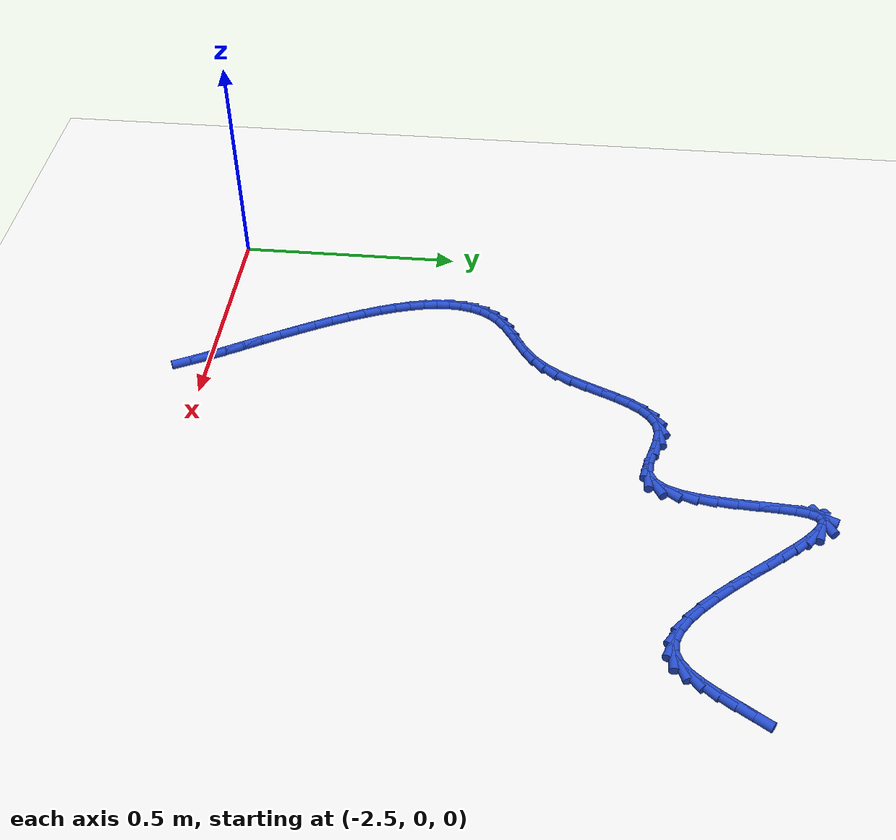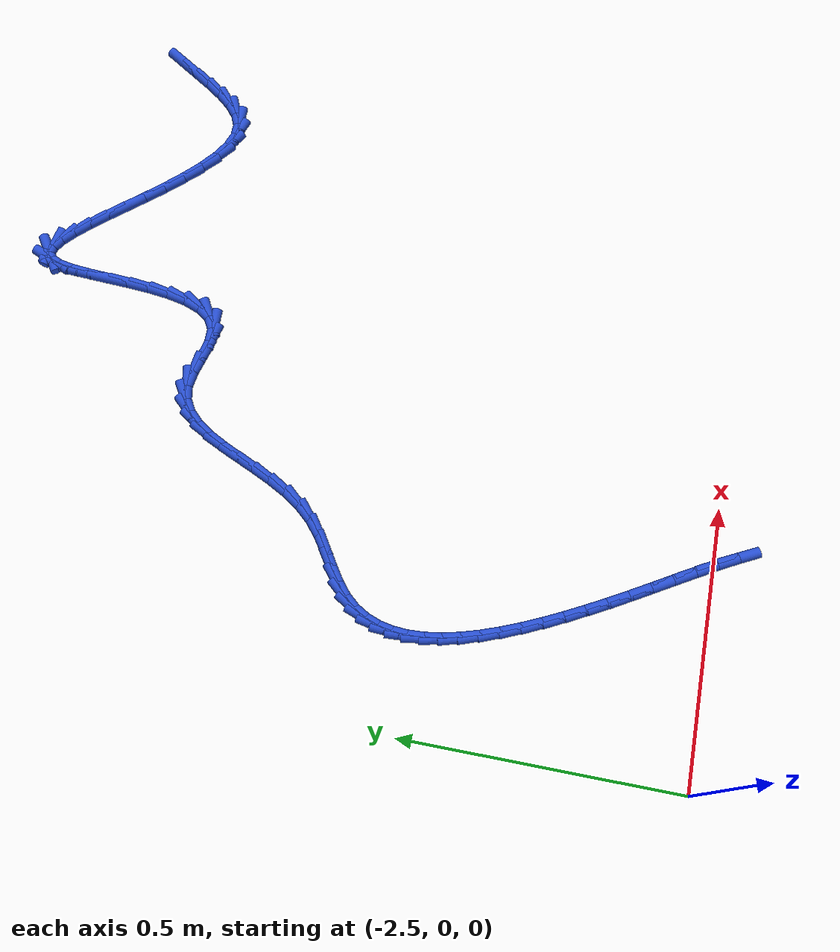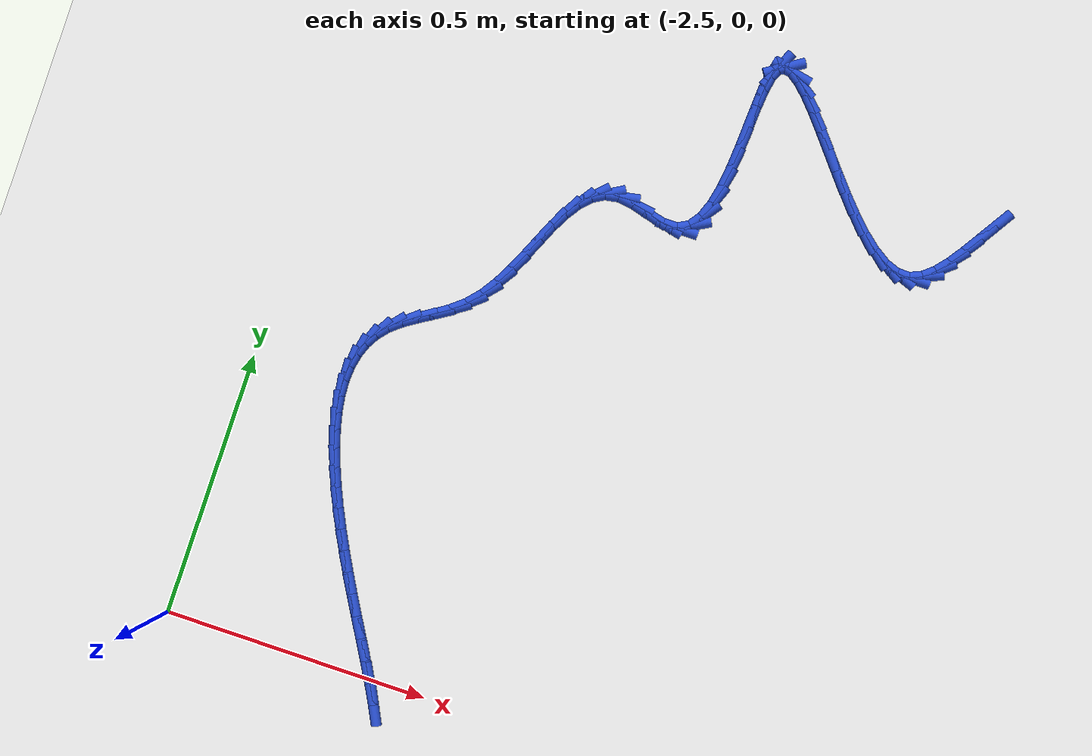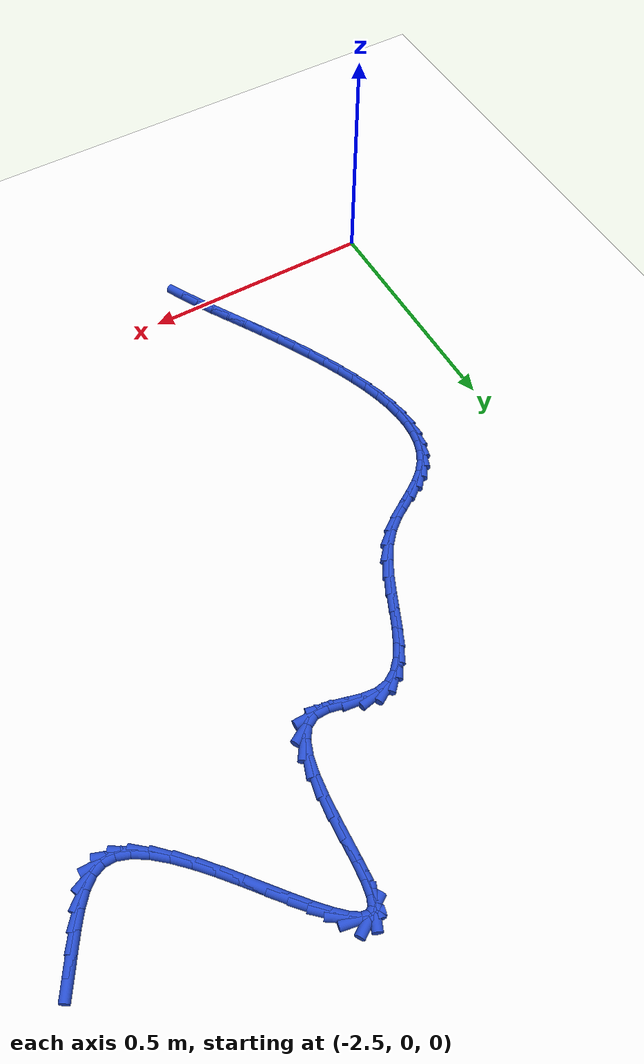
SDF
<sdf version="1.6">
 <world name="default">
  <model name="ground_plane">
   <static>1</static>
   <link name="link">
    <collision name="collision">
     <geometry><plane><normal>0 0 1</normal><size>100 100</size></plane></geometry>
     <surface><friction><ode><mu>100</mu><mu2>50</mu2></ode></friction></surface>
    </collision>
    <visual name="visual">
     <cast_shadows>0</cast_shadows>
     <geometry><plane><normal>0 0 1</normal><size>100 100</size></plane></geometry>
     <material>
      <script><uri>file://media/materials/scripts/gazebo.material</uri><name>Gazebo/WhiteGlow</name></script>
     </material>
    </visual>
   </link>
  </model>
  <model name="line">
   <link name="link_69">
    <pose>-1.279159101670277 1.159809078234587 0.01 0 1.57 1.0065140315327161</pose>
    <collision name="collision">
     <geometry><cylinder><radius>0.01</radius><length>0.08</length></cylinder></geometry>
    </collision>
    <visual name="visual">
     <material>
      <script><name>Gazebo/Blue</name><uri>file://media/materials/scripts/gazebo.material</uri></script>
     </material>
     <geometry><cylinder><radius>0.01</radius><length>0.08</length></cylinder></geometry>
    </visual>
   </link>
   <link name="link_70">
    <pose>-1.2985052958730665 1.1292430455587805 0.01 0 1.57 1.0031792979952</pose>
    <collision name="collision">
     <geometry><cylinder><radius>0.01</radius><length>0.08</length></cylinder></geometry>
    </collision>
    <visual name="visual">
     <material>
      <script><name>Gazebo/Blue</name><uri>file://media/materials/scripts/gazebo.material</uri></script>
     </material>
     <geometry><cylinder><radius>0.01</radius><length>0.08</length></cylinder></geometry>
    </visual>
   </link>
   <link name="link_71">
    <pose>-1.317559643579624 1.0993591078808178 0.01 0 1.57 0.9601539322774792</pose>
    <collision name="collision">
     <geometry><cylinder><radius>0.01</radius><length>0.08</length></cylinder></geometry>
    </collision>
    <visual name="visual">
     <material>
      <script><name>Gazebo/Blue</name><uri>file://media/materials/scripts/gazebo.material</uri></script>
     </material>
     <geometry><cylinder><radius>0.01</radius><length>0.08</length></cylinder></geometry>
    </visual>
   </link>
   <link name="link_72">
    <pose>-1.3367429175540821 1.0719495553267013 0.01 0 1.57 0.8647608406528363</pose>
    <collision name="collision">
     <geometry><cylinder><radius>0.01</radius><length>0.08</length></cylinder></geometry>
    </collision>
    <visual name="visual">
     <material>
      <script><name>Gazebo/Blue</name><uri>file://media/materials/scripts/gazebo.material</uri></script>
     </material>
     <geometry><cylinder><radius>0.01</radius><length>0.08</length></cylinder></geometry>
    </visual>
   </link>
   <link name="link_73">
    <pose>-1.356475890560572 1.0488066780224325 0.01 0 1.57 0.6899026368323384</pose>
    <collision name="collision">
     <geometry><cylinder><radius>0.01</radius><length>0.08</length></cylinder></geometry>
    </collision>
    <visual name="visual">
     <material>
      <script><name>Gazebo/Blue</name><uri>file://media/materials/scripts/gazebo.material</uri></script>
     </material>
     <geometry><cylinder><radius>0.01</radius><length>0.08</length></cylinder></geometry>
    </visual>
   </link>
   <link name="link_74">
    <pose>-1.3771793353632267 1.0317227660940138 0.01 0 1.57 0.39581402573477303</pose>
    <collision name="collision">
     <geometry><cylinder><radius>0.01</radius><length>0.08</length></cylinder></geometry>
    </collision>
    <visual name="visual">
     <material>
      <script><name>Gazebo/Blue</name><uri>file://media/materials/scripts/gazebo.material</uri></script>
     </material>
     <geometry><cylinder><radius>0.01</radius><length>0.08</length></cylinder></geometry>
    </visual>
   </link>
   <link name="link_75">
    <pose>-1.3992740247261781 1.022490109667447 0.01 0 1.57 -0.009066226778642212</pose>
    <collision name="collision">
     <geometry><cylinder><radius>0.01</radius><length>0.08</length></cylinder></geometry>
    </collision>
    <visual name="visual">
     <material>
      <script><name>Gazebo/Blue</name><uri>file://media/materials/scripts/gazebo.material</uri></script>
     </material>
     <geometry><cylinder><radius>0.01</radius><length>0.08</length></cylinder></geometry>
    </visual>
   </link>
   <link name="link_76">
    <pose>-1.423132272507483 1.022706419879051 0.01 0 1.57 -0.3501738068152945</pose>
    <collision name="collision">
     <geometry><cylinder><radius>0.01</radius><length>0.08</length></cylinder></geometry>
    </collision>
    <visual name="visual">
     <material>
      <script><name>Gazebo/Blue</name><uri>file://media/materials/scripts/gazebo.material</uri></script>
     </material>
     <geometry><cylinder><radius>0.01</radius><length>0.08</length></cylinder></geometry>
    </visual>
   </link>
   <link name="link_77">
    <pose>-1.448641675409721 1.0320231036243914 0.01 0 1.57 -0.5644167396085268</pose>
    <collision name="collision">
     <geometry><cylinder><radius>0.01</radius><length>0.08</length></cylinder></geometry>
    </collision>
    <visual name="visual">
     <material>
      <script><name>Gazebo/Blue</name><uri>file://media/materials/scripts/gazebo.material</uri></script>
     </material>
     <geometry><cylinder><radius>0.01</radius><length>0.08</length></cylinder></geometry>
    </visual>
   </link>
   <link name="link_78">
    <pose>-1.4754107972388324 1.0489711558146522 0.01 0 1.57 -0.6962014273048526</pose>
    <collision name="collision">
     <geometry><cylinder><radius>0.01</radius><length>0.08</length></cylinder></geometry>
    </collision>
    <visual name="visual">
     <material>
      <script><name>Gazebo/Blue</name><uri>file://media/materials/scripts/gazebo.material</uri></script>
     </material>
     <geometry><cylinder><radius>0.01</radius><length>0.08</length></cylinder></geometry>
    </visual>
   </link>
   <link name="link_79">
    <pose>-1.5030448547760247 1.072068131918321 0.01 0 1.57 -0.7792989231242008</pose>
    <collision name="collision">
     <geometry><cylinder><radius>0.01</radius><length>0.08</length></cylinder></geometry>
    </collision>
    <visual name="visual">
     <material>
      <script><name>Gazebo/Blue</name><uri>file://media/materials/scripts/gazebo.material</uri></script>
     </material>
     <geometry><cylinder><radius>0.01</radius><length>0.08</length></cylinder></geometry>
    </visual>
   </link>
   <link name="link_80">
    <pose>-1.5311490648025043 1.0998315874038873 0.01 0 1.57 -0.8321769366018268</pose>
    <collision name="collision">
     <geometry><cylinder><radius>0.01</radius><length>0.08</length></cylinder></geometry>
    </collision>
    <visual name="visual">
     <material>
      <script><name>Gazebo/Blue</name><uri>file://media/materials/scripts/gazebo.material</uri></script>
     </material>
     <geometry><cylinder><radius>0.01</radius><length>0.08</length></cylinder></geometry>
    </visual>
   </link>
   <link name="link_81">
    <pose>-1.5593286440994776 1.1307790777398397 0.01 0 1.57 -0.8643770675902296</pose>
    <collision name="collision">
     <geometry><cylinder><radius>0.01</radius><length>0.08</length></cylinder></geometry>
    </collision>
    <visual name="visual">
     <material>
      <script><name>Gazebo/Blue</name><uri>file://media/materials/scripts/gazebo.material</uri></script>
     </material>
     <geometry><cylinder><radius>0.01</radius><length>0.08</length></cylinder></geometry>
    </visual>
   </link>
   <link name="link_82">
    <pose>-1.5871888094481519 1.1634281583946662 0.01 0 1.57 -0.8804591954986174</pose>
    <collision name="collision">
     <geometry><cylinder><radius>0.01</radius><length>0.08</length></cylinder></geometry>
    </collision>
    <visual name="visual">
     <material>
      <script><name>Gazebo/Blue</name><uri>file://media/materials/scripts/gazebo.material</uri></script>
     </material>
     <geometry><cylinder><radius>0.01</radius><length>0.08</length></cylinder></geometry>
    </visual>
   </link>
   <link name="link_83">
    <pose>-1.6143347776297345 1.1962963848368557 0.01 0 1.57 -0.8816947324710692</pose>
    <collision name="collision">
     <geometry><cylinder><radius>0.01</radius><length>0.08</length></cylinder></geometry>
    </collision>
    <visual name="visual">
     <material>
      <script><name>Gazebo/Blue</name><uri>file://media/materials/scripts/gazebo.material</uri></script>
     </material>
     <geometry><cylinder><radius>0.01</radius><length>0.08</length></cylinder></geometry>
    </visual>
   </link>
   <link name="link_84">
    <pose>-1.640371765425432 1.2279013125348976 0.01 0 1.57 -0.8662435763793179</pose>
    <collision name="collision">
     <geometry><cylinder><radius>0.01</radius><length>0.08</length></cylinder></geometry>
    </collision>
    <visual name="visual">
     <material>
      <script><name>Gazebo/Blue</name><uri>file://media/materials/scripts/gazebo.material</uri></script>
     </material>
     <geometry><cylinder><radius>0.01</radius><length>0.08</length></cylinder></geometry>
    </visual>
   </link>
   <link name="link_85">
    <pose>-1.6649049896164503 1.256760496957279 0.01 0 1.57 -0.8276092074091967</pose>
    <collision name="collision">
     <geometry><cylinder><radius>0.01</radius><length>0.08</length></cylinder></geometry>
    </collision>
    <visual name="visual">
     <material>
      <script><name>Gazebo/Blue</name><uri>file://media/materials/scripts/gazebo.material</uri></script>
     </material>
     <geometry><cylinder><radius>0.01</radius><length>0.08</length></cylinder></geometry>
    </visual>
   </link>
   <link name="link_86">
    <pose>-1.6875396669839973 1.28139149357249 0.01 0 1.57 -0.7492213634640081</pose>
    <collision name="collision">
     <geometry><cylinder><radius>0.01</radius><length>0.08</length></cylinder></geometry>
    </collision>
    <visual name="visual">
     <material>
      <script><name>Gazebo/Blue</name><uri>file://media/materials/scripts/gazebo.material</uri></script>
     </material>
     <geometry><cylinder><radius>0.01</radius><length>0.08</length></cylinder></geometry>
    </visual>
   </link>
   <link name="link_87">
    <pose>-1.7078810143092795 1.300311857849019 0.01 0 1.57 -0.5863719423166787</pose>
    <collision name="collision">
     <geometry><cylinder><radius>0.01</radius><length>0.08</length></cylinder></geometry>
    </collision>
    <visual name="visual">
     <material>
      <script><name>Gazebo/Blue</name><uri>file://media/materials/scripts/gazebo.material</uri></script>
     </material>
     <geometry><cylinder><radius>0.01</radius><length>0.08</length></cylinder></geometry>
    </visual>
   </link>
   <link name="link_88">
    <pose>-1.7255342483735046 1.3120391452553544 0.01 0 1.57 -0.2064659449492439</pose>
    <collision name="collision">
     <geometry><cylinder><radius>0.01</radius><length>0.08</length></cylinder></geometry>
    </collision>
    <visual name="visual">
     <material>
      <script><name>Gazebo/Blue</name><uri>file://media/materials/scripts/gazebo.material</uri></script>
     </material>
     <geometry><cylinder><radius>0.01</radius><length>0.08</length></cylinder></geometry>
    </visual>
   </link>
   <link name="link_89">
    <pose>-1.740104585957878 1.315090911259985 0.01 0 1.57 0.5694984922600155</pose>
    <collision name="collision">
     <geometry><cylinder><radius>0.01</radius><length>0.08</length></cylinder></geometry>
    </collision>
    <visual name="visual">
     <material>
      <script><name>Gazebo/Blue</name><uri>file://media/materials/scripts/gazebo.material</uri></script>
     </material>
     <geometry><cylinder><radius>0.01</radius><length>0.08</length></cylinder></geometry>
    </visual>
   </link>
   <link name="link_90">
    <pose>-1.7511984208587388 1.3079879588643313 0.01 0 1.57 1.1680947320906683</pose>
    <collision name="collision">
     <geometry><cylinder><radius>0.01</radius><length>0.08</length></cylinder></geometry>
    </collision>
    <visual name="visual">
     <material>
      <script><name>Gazebo/Blue</name><uri>file://media/materials/scripts/gazebo.material</uri></script>
     </material>
     <geometry><cylinder><radius>0.01</radius><length>0.08</length></cylinder></geometry>
    </visual>
   </link>
   <link name="link_91">
    <pose>-1.7587705209930389 1.2902122991285345 0.01 0 1.57 1.3913517327843767</pose>
    <collision name="collision">
     <geometry><cylinder><radius>0.01</radius><length>0.08</length></cylinder></geometry>
    </collision>
    <visual name="visual">
     <material>
      <script><name>Gazebo/Blue</name><uri>file://media/materials/scripts/gazebo.material</uri></script>
     </material>
     <geometry><cylinder><radius>0.01</radius><length>0.08</length></cylinder></geometry>
    </visual>
   </link>
   <link name="link_92">
    <pose>-1.763608208018566 1.26354306370137 0.01 0 1.57 1.4809774849759714</pose>
    <collision name="collision">
     <geometry><cylinder><radius>0.01</radius><length>0.08</length></cylinder></geometry>
    </collision>
    <visual name="visual">
     <material>
      <script><name>Gazebo/Blue</name><uri>file://media/materials/scripts/gazebo.material</uri></script>
     </material>
     <geometry><cylinder><radius>0.01</radius><length>0.08</length></cylinder></geometry>
    </visual>
   </link>
   <link name="link_93">
    <pose>-1.7666205520707914 1.2300953036095459 0.01 0 1.57 1.5158529048032474</pose>
    <collision name="collision">
     <geometry><cylinder><radius>0.01</radius><length>0.08</length></cylinder></geometry>
    </collision>
    <visual name="visual">
     <material>
      <script><name>Gazebo/Blue</name><uri>file://media/materials/scripts/gazebo.material</uri></script>
     </material>
     <geometry><cylinder><radius>0.01</radius><length>0.08</length></cylinder></geometry>
    </visual>
   </link>
   <link name="link_94">
    <pose>-1.7687166232851848 1.1919840698797715 0.01 0 1.57 1.5194669781931232</pose>
    <collision name="collision">
     <geometry><cylinder><radius>0.01</radius><length>0.08</length></cylinder></geometry>
    </collision>
    <visual name="visual">
     <material>
      <script><name>Gazebo/Blue</name><uri>file://media/materials/scripts/gazebo.material</uri></script>
     </material>
     <geometry><cylinder><radius>0.01</radius><length>0.08</length></cylinder></geometry>
    </visual>
   </link>
   <link name="link_95">
    <pose>-1.770805491797217 1.1513244135387555 0.01 0 1.57 1.498144777492259</pose>
    <collision name="collision">
     <geometry><cylinder><radius>0.01</radius><length>0.08</length></cylinder></geometry>
    </collision>
    <visual name="visual">
     <material>
      <script><name>Gazebo/Blue</name><uri>file://media/materials/scripts/gazebo.material</uri></script>
     </material>
     <geometry><cylinder><radius>0.01</radius><length>0.08</length></cylinder></geometry>
    </visual>
   </link>
   <link name="link_96">
    <pose>-1.7737962277423578 1.1102313856132073 0.01 0 1.57 1.449559047472858</pose>
    <collision name="collision">
     <geometry><cylinder><radius>0.01</radius><length>0.08</length></cylinder></geometry>
    </collision>
    <visual name="visual">
     <material>
      <script><name>Gazebo/Blue</name><uri>file://media/materials/scripts/gazebo.material</uri></script>
     </material>
     <geometry><cylinder><radius>0.01</radius><length>0.08</length></cylinder></geometry>
    </visual>
   </link>
   <link name="link_97">
    <pose>-1.7785979012560782 1.0708200371298355 0.01 0 1.57 1.3626584848872938</pose>
    <collision name="collision">
     <geometry><cylinder><radius>0.01</radius><length>0.08</length></cylinder></geometry>
    </collision>
    <visual name="visual">
     <material>
      <script><name>Gazebo/Blue</name><uri>file://media/materials/scripts/gazebo.material</uri></script>
     </material>
     <geometry><cylinder><radius>0.01</radius><length>0.08</length></cylinder></geometry>
    </visual>
   </link>
   <link name="link_98">
    <pose>-1.7861195824738485 1.0352054191153492 0.01 0 1.57 1.211665745398329</pose>
    <collision name="collision">
     <geometry><cylinder><radius>0.01</radius><length>0.08</length></cylinder></geometry>
    </collision>
    <visual name="visual">
     <material>
      <script><name>Gazebo/Blue</name><uri>file://media/materials/scripts/gazebo.material</uri></script>
     </material>
     <geometry><cylinder><radius>0.01</radius><length>0.08</length></cylinder></geometry>
    </visual>
   </link>
   <link name="link_99">
    <pose>-1.7972703415311393 1.0055025825964574 0.01 0 1.57 0.944280736452537</pose>
    <collision name="collision">
     <geometry><cylinder><radius>0.01</radius><length>0.08</length></cylinder></geometry>
    </collision>
    <visual name="visual">
     <material>
      <script><name>Gazebo/Blue</name><uri>file://media/materials/scripts/gazebo.material</uri></script>
     </material>
     <geometry><cylinder><radius>0.01</radius><length>0.08</length></cylinder></geometry>
    </visual>
   </link>
   <link name="link_100">
    <pose>-1.8129592485634203 0.983826578599869 0.01 0 1.57 0.4995408670516688</pose>
    <collision name="collision">
     <geometry><cylinder><radius>0.01</radius><length>0.08</length></cylinder></geometry>
    </collision>
    <visual name="visual">
     <material>
      <script><name>Gazebo/Blue</name><uri>file://media/materials/scripts/gazebo.material</uri></script>
     </material>
     <geometry><cylinder><radius>0.01</radius><length>0.08</length></cylinder></geometry>
    </visual>
   </link>
   <link name="link_101">
    <pose>-1.8340953737061618 0.9722924581522927 0.01 0 1.57 0.0031661683400550887</pose>
    <collision name="collision">
     <geometry><cylinder><radius>0.01</radius><length>0.08</length></cylinder></geometry>
    </collision>
    <visual name="visual">
     <material>
      <script><name>Gazebo/Blue</name><uri>file://media/materials/scripts/gazebo.material</uri></script>
     </material>
     <geometry><cylinder><radius>0.01</radius><length>0.08</length></cylinder></geometry>
    </visual>
   </link>
   <link name="link_102">
    <pose>-1.8612000784919709 0.9722066398073677 0.01 0 1.57 -0.23364873128672217</pose>
    <collision name="collision">
     <geometry><cylinder><radius>0.01</radius><length>0.08</length></cylinder></geometry>
    </collision>
    <visual name="visual">
     <material>
      <script><name>Gazebo/Blue</name><uri>file://media/materials/scripts/gazebo.material</uri></script>
     </material>
     <geometry><cylinder><radius>0.01</radius><length>0.08</length></cylinder></geometry>
    </visual>
   </link>
   <link name="link_103">
    <pose>-1.8922653135903613 0.9796000239937267 0.01 0 1.57 -0.2679857738535311</pose>
    <collision name="collision">
     <geometry><cylinder><radius>0.01</radius><length>0.08</length></cylinder></geometry>
    </collision>
    <visual name="visual">
     <material>
      <script><name>Gazebo/Blue</name><uri>file://media/materials/scripts/gazebo.material</uri></script>
     </material>
     <geometry><cylinder><radius>0.01</radius><length>0.08</length></cylinder></geometry>
    </visual>
   </link>
   <link name="link_104">
    <pose>-1.9242686487217995 0.9883878465161001 0.01 0 1.57 -0.13612090513714556</pose>
    <collision name="collision">
     <geometry><cylinder><radius>0.01</radius><length>0.08</length></cylinder></geometry>
    </collision>
    <visual name="visual">
     <material>
      <script><name>Gazebo/Blue</name><uri>file://media/materials/scripts/gazebo.material</uri></script>
     </material>
     <geometry><cylinder><radius>0.01</radius><length>0.08</length></cylinder></geometry>
    </visual>
   </link>
   <link name="link_105">
    <pose>-1.9541880637186182 0.9924858461632704 0.01 0 1.57 0.1804391101125435</pose>
    <collision name="collision">
     <geometry><cylinder><radius>0.01</radius><length>0.08</length></cylinder></geometry>
    </collision>
    <visual name="visual">
     <material>
      <script><name>Gazebo/Blue</name><uri>file://media/materials/scripts/gazebo.material</uri></script>
     </material>
     <geometry><cylinder><radius>0.01</radius><length>0.08</length></cylinder></geometry>
    </visual>
   </link>
   <link name="link_106">
    <pose>-1.9799987664048868 0.9877773747811328 0.01 0 1.57 0.5272306696854829</pose>
    <collision name="collision">
     <geometry><cylinder><radius>0.01</radius><length>0.08</length></cylinder></geometry>
    </collision>
    <visual name="visual">
     <material>
      <script><name>Gazebo/Blue</name><uri>file://media/materials/scripts/gazebo.material</uri></script>
     </material>
     <geometry><cylinder><radius>0.01</radius><length>0.08</length></cylinder></geometry>
    </visual>
   </link>
   <link name="link_107">
    <pose>-2.002092707090293 0.9749142164194387 0.01 0 1.57 0.7990552548292474</pose>
    <collision name="collision">
     <geometry><cylinder><radius>0.01</radius><length>0.08</length></cylinder></geometry>
    </collision>
    <visual name="visual">
     <material>
      <script><name>Gazebo/Blue</name><uri>file://media/materials/scripts/gazebo.material</uri></script>
     </material>
     <geometry><cylinder><radius>0.01</radius><length>0.08</length></cylinder></geometry>
    </visual>
   </link>
   <link name="link_108">
    <pose>-2.021220789057481 0.955256398942121 0.01 0 1.57 0.9777116052703662</pose>
    <collision name="collision">
     <geometry><cylinder><radius>0.01</radius><length>0.08</length></cylinder></geometry>
    </collision>
    <visual name="visual">
     <material>
      <script><name>Gazebo/Blue</name><uri>file://media/materials/scripts/gazebo.material</uri></script>
     </material>
     <geometry><cylinder><radius>0.01</radius><length>0.08</length></cylinder></geometry>
    </visual>
   </link>
   <link name="link_109">
    <pose>-2.0381339155890936 0.9301639502131106 0.01 0 1.57 1.0836910795722672</pose>
    <collision name="collision">
     <geometry><cylinder><radius>0.01</radius><length>0.08</length></cylinder></geometry>
    </collision>
    <visual name="visual">
     <material>
      <script><name>Gazebo/Blue</name><uri>file://media/materials/scripts/gazebo.material</uri></script>
     </material>
     <geometry><cylinder><radius>0.01</radius><length>0.08</length></cylinder></geometry>
    </visual>
   </link>
   <link name="link_110">
    <pose>-2.053582989967775 0.9009968980963404 0.01 0 1.57 1.137837191953618</pose>
    <collision name="collision">
     <geometry><cylinder><radius>0.01</radius><length>0.08</length></cylinder></geometry>
    </collision>
    <visual name="visual">
     <material>
      <script><name>Gazebo/Blue</name><uri>file://media/materials/scripts/gazebo.material</uri></script>
     </material>
     <geometry><cylinder><radius>0.01</radius><length>0.08</length></cylinder></geometry>
    </visual>
   </link>
   <link name="link_111">
    <pose>-2.068318915476167 0.8691152704557418 0.01 0 1.57 1.1525205816904691</pose>
    <collision name="collision">
     <geometry><cylinder><radius>0.01</radius><length>0.08</length></cylinder></geometry>
    </collision>
    <visual name="visual">
     <material>
      <script><name>Gazebo/Blue</name><uri>file://media/materials/scripts/gazebo.material</uri></script>
     </material>
     <geometry><cylinder><radius>0.01</radius><length>0.08</length></cylinder></geometry>
    </visual>
   </link>
   <link name="link_112">
    <pose>-2.0830925953969137 0.8358790951552474 0.01 0 1.57 1.132818817298513</pose>
    <collision name="collision">
     <geometry><cylinder><radius>0.01</radius><length>0.08</length></cylinder></geometry>
    </collision>
    <visual name="visual">
     <material>
      <script><name>Gazebo/Blue</name><uri>file://media/materials/scripts/gazebo.material</uri></script>
     </material>
     <geometry><cylinder><radius>0.01</radius><length>0.08</length></cylinder></geometry>
    </visual>
   </link>
   <link name="link_113">
    <pose>-2.098654933012657 0.8026484000587881 0.01 0 1.57 1.0782251467264803</pose>
    <collision name="collision">
     <geometry><cylinder><radius>0.01</radius><length>0.08</length></cylinder></geometry>
    </collision>
    <visual name="visual">
     <material>
      <script><name>Gazebo/Blue</name><uri>file://media/materials/scripts/gazebo.material</uri></script>
     </material>
     <geometry><cylinder><radius>0.01</radius><length>0.08</length></cylinder></geometry>
    </visual>
   </link>
   <link name="link_114">
    <pose>-2.115756831606041 0.7707832130302966 0.01 0 1.57 0.9836036331536047</pose>
    <collision name="collision">
     <geometry><cylinder><radius>0.01</radius><length>0.08</length></cylinder></geometry>
    </collision>
    <visual name="visual">
     <material>
      <script><name>Gazebo/Blue</name><uri>file://media/materials/scripts/gazebo.material</uri></script>
     </material>
     <geometry><cylinder><radius>0.01</radius><length>0.08</length></cylinder></geometry>
    </visual>
   </link>
   <link name="link_115">
    <pose>-2.13514919445971 0.7416435619337048 0.01 0 1.57 0.8414688541394961</pose>
    <collision name="collision">
     <geometry><cylinder><radius>0.01</radius><length>0.08</length></cylinder></geometry>
    </collision>
    <visual name="visual">
     <material>
      <script><name>Gazebo/Blue</name><uri>file://media/materials/scripts/gazebo.material</uri></script>
     </material>
     <geometry><cylinder><radius>0.01</radius><length>0.08</length></cylinder></geometry>
    </visual>
   </link>
   <link name="link_116">
    <pose>-2.157562295279019 0.7165647633417827 0.01 0 1.57 0.689191156214235</pose>
    <collision name="collision">
     <geometry><cylinder><radius>0.01</radius><length>0.08</length></cylinder></geometry>
    </collision>
    <visual name="visual">
     <material>
      <script><name>Gazebo/Blue</name><uri>file://media/materials/scripts/gazebo.material</uri></script>
     </material>
     <geometry><cylinder><radius>0.01</radius><length>0.08</length></cylinder></geometry>
    </visual>
   </link>
   <link name="link_117">
    <pose>-2.1827985362832583 0.695770676130698 0.01 0 1.57 0.5907189803474093</pose>
    <collision name="collision">
     <geometry><cylinder><radius>0.01</radius><length>0.08</length></cylinder></geometry>
    </collision>
    <visual name="visual">
     <material>
      <script><name>Gazebo/Blue</name><uri>file://media/materials/scripts/gazebo.material</uri></script>
     </material>
     <geometry><cylinder><radius>0.01</radius><length>0.08</length></cylinder></geometry>
    </visual>
   </link>
   <link name="link_118">
    <pose>-2.2093766258451506 0.6779474770436091 0.01 0 1.57 0.5534953499788212</pose>
    <collision name="collision">
     <geometry><cylinder><radius>0.01</radius><length>0.08</length></cylinder></geometry>
    </collision>
    <visual name="visual">
     <material>
      <script><name>Gazebo/Blue</name><uri>file://media/materials/scripts/gazebo.material</uri></script>
     </material>
     <geometry><cylinder><radius>0.01</radius><length>0.08</length></cylinder></geometry>
    </visual>
   </link>
   <link name="link_119">
    <pose>-2.235721119360957 0.6616685609870554 0.01 0 1.57 0.5824593974868777</pose>
    <collision name="collision">
     <geometry><cylinder><radius>0.01</radius><length>0.08</length></cylinder></geometry>
    </collision>
    <visual name="visual">
     <material>
      <script><name>Gazebo/Blue</name><uri>file://media/materials/scripts/gazebo.material</uri></script>
     </material>
     <geometry><cylinder><radius>0.01</radius><length>0.08</length></cylinder></geometry>
    </visual>
   </link>
   <link name="link_120">
    <pose>-2.260256572226936 0.6455073228675753 0.01 0 1.57 0.689918790912646</pose>
    <collision name="collision">
     <geometry><cylinder><radius>0.01</radius><length>0.08</length></cylinder></geometry>
    </collision>
    <visual name="visual">
     <material>
      <script><name>Gazebo/Blue</name><uri>file://media/materials/scripts/gazebo.material</uri></script>
     </material>
     <geometry><cylinder><radius>0.01</radius><length>0.08</length></cylinder></geometry>
    </visual>
   </link>
   <link name="link_121">
    <pose>-2.281417248377929 0.6280455416397124 0.01 0 1.57 0.8604591923142747</pose>
    <collision name="collision">
     <geometry><cylinder><radius>0.01</radius><length>0.08</length></cylinder></geometry>
    </collision>
    <visual name="visual">
     <material>
      <script><name>Gazebo/Blue</name><uri>file://media/materials/scripts/gazebo.material</uri></script>
     </material>
     <geometry><cylinder><radius>0.01</radius><length>0.08</length></cylinder></geometry>
    </visual>
   </link>
   <link name="link_122">
    <pose>-2.298290065239091 0.6084286112807847 0.01 0 1.57 1.040726236391041</pose>
    <collision name="collision">
     <geometry><cylinder><radius>0.01</radius><length>0.08</length></cylinder></geometry>
    </collision>
    <visual name="visual">
     <material>
      <script><name>Gazebo/Blue</name><uri>file://media/materials/scripts/gazebo.material</uri></script>
     </material>
     <geometry><cylinder><radius>0.01</radius><length>0.08</length></cylinder></geometry>
    </visual>
   </link>
   <link name="link_123">
    <pose>-2.3110160886672038 0.5867122616524928 0.01 0 1.57 1.2143545795935167</pose>
    <collision name="collision">
     <geometry><cylinder><radius>0.01</radius><length>0.08</length></cylinder></geometry>
    </collision>
    <visual name="visual">
     <material>
      <script><name>Gazebo/Blue</name><uri>file://media/materials/scripts/gazebo.material</uri></script>
     </material>
     <geometry><cylinder><radius>0.01</radius><length>0.08</length></cylinder></geometry>
    </visual>
   </link>
   <link name="link_124">
    <pose>-2.3198322243008063 0.5630349874244772 0.01 0 1.57 1.3717718442089943</pose>
    <collision name="collision">
     <geometry><cylinder><radius>0.01</radius><length>0.08</length></cylinder></geometry>
    </collision>
    <visual name="visual">
     <material>
      <script><name>Gazebo/Blue</name><uri>file://media/materials/scripts/gazebo.material</uri></script>
     </material>
     <geometry><cylinder><radius>0.01</radius><length>0.08</length></cylinder></geometry>
    </visual>
   </link>
   <link name="link_125">
    <pose>-2.324975377778438 0.5375352832663773 0.01 0 1.57 1.5080807268448222</pose>
    <collision name="collision">
     <geometry><cylinder><radius>0.01</radius><length>0.08</length></cylinder></geometry>
    </collision>
    <visual name="visual">
     <material>
      <script><name>Gazebo/Blue</name><uri>file://media/materials/scripts/gazebo.material</uri></script>
     </material>
     <geometry><cylinder><radius>0.01</radius><length>0.08</length></cylinder></geometry>
    </visual>
   </link>
   <link name="link_126">
    <pose>-2.3266824547386364 0.5103516438478338 0.01 0 1.57 -1.518906239013687</pose>
    <collision name="collision">
     <geometry><cylinder><radius>0.01</radius><length>0.08</length></cylinder></geometry>
    </collision>
    <visual name="visual">
     <material>
      <script><name>Gazebo/Blue</name><uri>file://media/materials/scripts/gazebo.material</uri></script>
     </material>
     <geometry><cylinder><radius>0.01</radius><length>0.08</length></cylinder></geometry>
    </visual>
   </link>
   <link name="link_127">
    <pose>-2.3251903608199407 0.4816225638384867 0.01 0 1.57 -1.4240503943725096</pose>
    <collision name="collision">
     <geometry><cylinder><radius>0.01</radius><length>0.08</length></cylinder></geometry>
    </collision>
    <visual name="visual">
     <material>
      <script><name>Gazebo/Blue</name><uri>file://media/materials/scripts/gazebo.material</uri></script>
     </material>
     <geometry><cylinder><radius>0.01</radius><length>0.08</length></cylinder></geometry>
    </visual>
   </link>
   <link name="link_128">
    <pose>-2.3207360016608893 0.45148653790797616 0.01 0 1.57 -1.346038176333954</pose>
    <collision name="collision">
     <geometry><cylinder><radius>0.01</radius><length>0.08</length></cylinder></geometry>
    </collision>
    <visual name="visual">
     <material>
      <script><name>Gazebo/Blue</name><uri>file://media/materials/scripts/gazebo.material</uri></script>
     </material>
     <geometry><cylinder><radius>0.01</radius><length>0.08</length></cylinder></geometry>
    </visual>
   </link>
   <link name="link_129">
    <pose>-2.3135562829000214 0.42008206072594234 0.01 0 1.57 -1.2819402800190427</pose>
    <collision name="collision">
     <geometry><cylinder><radius>0.01</radius><length>0.08</length></cylinder></geometry>
    </collision>
    <visual name="visual">
     <material>
      <script><name>Gazebo/Blue</name><uri>file://media/materials/scripts/gazebo.material</uri></script>
     </material>
     <geometry><cylinder><radius>0.01</radius><length>0.08</length></cylinder></geometry>
    </visual>
   </link>
   <link name="link_130">
    <pose>-2.3038881101758735 0.3875476269620254 0.01 0 1.57 -1.2291966558021017</pose>
    <collision name="collision">
     <geometry><cylinder><radius>0.01</radius><length>0.08</length></cylinder></geometry>
    </collision>
    <visual name="visual">
     <material>
      <script><name>Gazebo/Blue</name><uri>file://media/materials/scripts/gazebo.material</uri></script>
     </material>
     <geometry><cylinder><radius>0.01</radius><length>0.08</length></cylinder></geometry>
    </visual>
   </link>
   <link name="link_131">
    <pose>-2.291968389126987 0.3540217312858655 0.01 0 1.57 -1.18571409596821</pose>
    <collision name="collision">
     <geometry><cylinder><radius>0.01</radius><length>0.08</length></cylinder></geometry>
    </collision>
    <visual name="visual">
     <material>
      <script><name>Gazebo/Blue</name><uri>file://media/materials/scripts/gazebo.material</uri></script>
     </material>
     <geometry><cylinder><radius>0.01</radius><length>0.08</length></cylinder></geometry>
    </visual>
   </link>
   <link name="link_132">
    <pose>-2.278034025391899 0.31964286836710293 0.01 0 1.57 -1.1498373942153215</pose>
    <collision name="collision">
     <geometry><cylinder><radius>0.01</radius><length>0.08</length></cylinder></geometry>
    </collision>
    <visual name="visual">
     <material>
      <script><name>Gazebo/Blue</name><uri>file://media/materials/scripts/gazebo.material</uri></script>
     </material>
     <geometry><cylinder><radius>0.01</radius><length>0.08</length></cylinder></geometry>
    </visual>
   </link>
   <link name="link_133">
    <pose>-2.2623219246091484 0.28454953287537815 0.01 0 1.57 -1.1202806927299558</pose>
    <collision name="collision">
     <geometry><cylinder><radius>0.01</radius><length>0.08</length></cylinder></geometry>
    </collision>
    <visual name="visual">
     <material>
      <script><name>Gazebo/Blue</name><uri>file://media/materials/scripts/gazebo.material</uri></script>
     </material>
     <geometry><cylinder><radius>0.01</radius><length>0.08</length></cylinder></geometry>
    </visual>
   </link>
   <link name="link_134">
    <pose>-2.2450689924172735 0.24888021948033046 0.01 0 1.57 -1.096056143245267</pose>
    <collision name="collision">
     <geometry><cylinder><radius>0.01</radius><length>0.08</length></cylinder></geometry>
    </collision>
    <visual name="visual">
     <material>
      <script><name>Gazebo/Blue</name><uri>file://media/materials/scripts/gazebo.material</uri></script>
     </material>
     <geometry><cylinder><radius>0.01</radius><length>0.08</length></cylinder></geometry>
    </visual>
   </link>
   <link name="link_135">
    <pose>-2.2265121344548127 0.21277342285160028 0.01 0 1.57 -1.0764129334075316</pose>
    <collision name="collision">
     <geometry><cylinder><radius>0.01</radius><length>0.08</length></cylinder></geometry>
    </collision>
    <visual name="visual">
     <material>
      <script><name>Gazebo/Blue</name><uri>file://media/materials/scripts/gazebo.material</uri></script>
     </material>
     <geometry><cylinder><radius>0.01</radius><length>0.08</length></cylinder></geometry>
    </visual>
   </link>
   <link name="link_136">
    <pose>-2.2068882563603056 0.17636763765882812 0.01 0 1.57 -1.060789542800911</pose>
    <collision name="collision">
     <geometry><cylinder><radius>0.01</radius><length>0.08</length></cylinder></geometry>
    </collision>
    <visual name="visual">
     <material>
      <script><name>Gazebo/Blue</name><uri>file://media/materials/scripts/gazebo.material</uri></script>
     </material>
     <geometry><cylinder><radius>0.01</radius><length>0.08</length></cylinder></geometry>
    </visual>
   </link>
   <link name="link_137">
    <pose>-2.186434263772289 0.1398013585716538 0.01 0 1.57 -1.0491652100260271</pose>
    <collision name="collision">
     <geometry><cylinder><radius>0.01</radius><length>0.08</length></cylinder></geometry>
    </collision>
    <visual name="visual">
     <material>
      <script><name>Gazebo/Blue</name><uri>file://media/materials/scripts/gazebo.material</uri></script>
     </material>
     <geometry><cylinder><radius>0.01</radius><length>0.08</length></cylinder></geometry>
    </visual>
   </link>
   <link name="link_138">
    <pose>-2.165408357883322 0.10321736792099218 0.01 0 1.57 -1.0440502867330452</pose>
    <collision name="collision">
     <geometry><cylinder><radius>0.01</radius><length>0.08</length></cylinder></geometry>
    </collision>
    <visual name="visual">
     <material>
      <script><name>Gazebo/Blue</name><uri>file://media/materials/scripts/gazebo.material</uri></script>
     </material>
     <geometry><cylinder><radius>0.01</radius><length>0.08</length></cylinder></geometry>
    </visual>
   </link>
   <link name="link_139">
    <pose>-2.144223656436363 0.06678963904097732 0.01 0 1.57 -1.0465957655842741</pose>
    <collision name="collision">
     <geometry><cylinder><radius>0.01</radius><length>0.08</length></cylinder></geometry>
    </collision>
    <visual name="visual">
     <material>
      <script><name>Gazebo/Blue</name><uri>file://media/materials/scripts/gazebo.material</uri></script>
     </material>
     <geometry><cylinder><radius>0.01</radius><length>0.08</length></cylinder></geometry>
    </visual>
   </link>
   <link name="link_140">
    <pose>-2.123361756008121 0.03070593284052731 0.01 0 1.57 -1.0571411717745225</pose>
    <collision name="collision">
     <geometry><cylinder><radius>0.01</radius><length>0.08</length></cylinder></geometry>
    </collision>
    <visual name="visual">
     <material>
      <script><name>Gazebo/Blue</name><uri>file://media/materials/scripts/gazebo.material</uri></script>
     </material>
     <geometry><cylinder><radius>0.01</radius><length>0.08</length></cylinder></geometry>
    </visual>
   </link>
   <link name="link_141">
    <pose>-2.103304556238174 -0.004845928752557706 0.01 0 1.57 -1.0765255783290721</pose>
    <collision name="collision">
     <geometry><cylinder><radius>0.01</radius><length>0.08</length></cylinder></geometry>
    </collision>
    <visual name="visual">
     <material>
      <script><name>Gazebo/Blue</name><uri>file://media/materials/scripts/gazebo.material</uri></script>
     </material>
     <geometry><cylinder><radius>0.01</radius><length>0.08</length></cylinder></geometry>
    </visual>
   </link>
   <link name="link_142">
    <pose>-2.0845339567660983 -0.039678123810475974 0.01 0 1.57 -1.106211875910068</pose>
    <collision name="collision">
     <geometry><cylinder><radius>0.01</radius><length>0.08</length></cylinder></geometry>
    </collision>
    <visual name="visual">
     <material>
      <script><name>Gazebo/Blue</name><uri>file://media/materials/scripts/gazebo.material</uri></script>
     </material>
     <geometry><cylinder><radius>0.01</radius><length>0.08</length></cylinder></geometry>
    </visual>
   </link>
  </model>
 </world>
</sdf>
